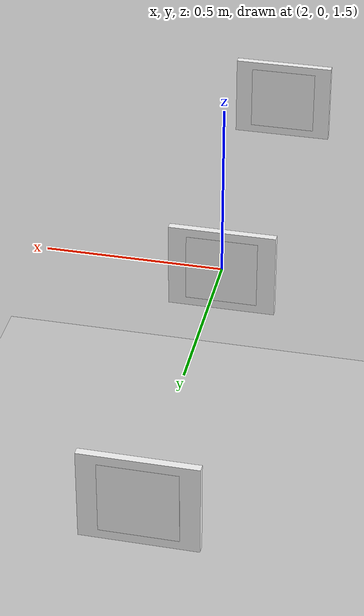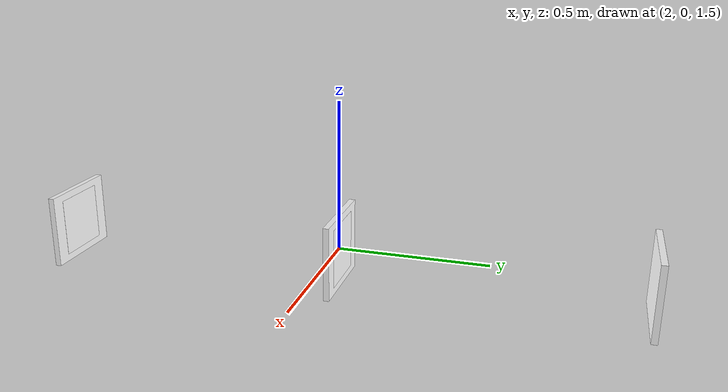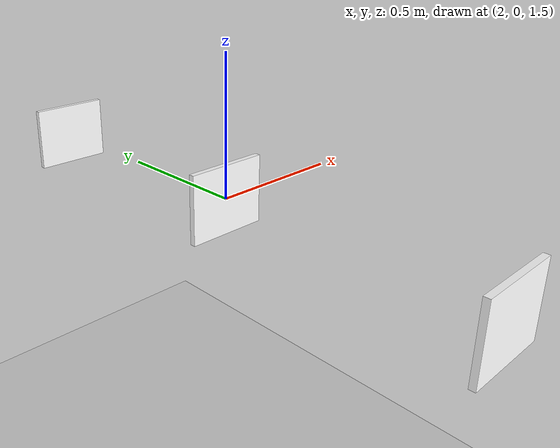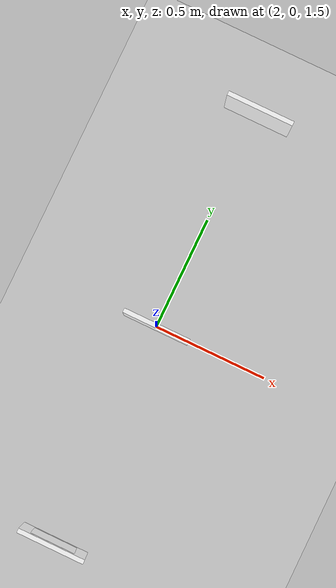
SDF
<?xml version="1.0" ?>
<sdf version="1.10">
  <world name="aruco_tag_world">

    <physics name="1ms" type="ignored">
      <max_step_size>0.001</max_step_size>
      <real_time_factor>1.0</real_time_factor>
    </physics>

    <plugin
      filename="gz-sim-physics-system"
      name="gz::sim::systems::Physics">
    </plugin>
    <plugin
      filename="gz-sim-user-commands-system"
      name="gz::sim::systems::UserCommands">
    </plugin>
    <plugin
      filename="gz-sim-scene-broadcaster-system"
      name="gz::sim::systems::SceneBroadcaster">
    </plugin>

    <light type="directional" name="sun">
      <cast_shadows>true</cast_shadows>
      <pose>0 0 10 0 0 0</pose>
      <diffuse>0.8 0.8 0.8 1</diffuse>
      <specular>0.2 0.2 0.2 1</specular>
      <attenuation>
        <range>1000</range>
        <constant>0.9</constant>
        <linear>0.01</linear>
        <quadratic>0.001</quadratic>
      </attenuation>
      <direction>-0.5 0.1 -0.9</direction>
    </light>

    <model name="ground_plane">
      <static>true</static>
      <link name="link">
        <collision name="collision">
          <geometry>
            <plane>
              <normal>0 0 1</normal>
              <size>20 20</size>
            </plane>
          </geometry>
        </collision>
        <visual name="visual">
          <geometry>
            <plane>
              <normal>0 0 1</normal>
              <size>20 20</size>
            </plane>
          </geometry>
          <material>
            <ambient>0.8 0.8 0.8 1</ambient>
            <diffuse>0.8 0.8 0.8 1</diffuse>
          </material>
        </visual>
      </link>
    </model>

    <include>
      <uri>model://aruco_tag_whiteboard</uri>
      <name>aruco_marker_1</name>
      <pose>2 0 1.5 0 0 0</pose>
    </include>

    <include>
      <uri>model://aruco_tag_whiteboard</uri>
      <name>aruco_marker_2</name>
      <pose>2 1 1.5 0 0 0</pose>
    </include>

    <include>
      <uri>model://aruco_tag_whiteboard</uri>
      <name>aruco_marker_3</name>
      <pose>2 -1 1.5 0 0 0</pose>
    </include>

  </world>
</sdf>

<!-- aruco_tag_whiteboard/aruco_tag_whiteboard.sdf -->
<sdf version="1.10">
  <model name="aruco_tag_whiteboard">
    <static>true</static>

    <link name="board_link">
      <pose>0 0 0 0 0 0</pose>

      <collision name="board_collision">
        <geometry>
          <box>
            <size>0.30 0.02 0.25</size>
          </box>
        </geometry>
      </collision>

      <visual name="board_visual">
        <geometry>
          <box>
            <size>0.30 0.02 0.25</size>
          </box>
        </geometry>
        <material>
          <ambient>1 1 1 1</ambient>
          <diffuse>1 1 1 1</diffuse>
          <specular>0.2 0.2 0.2 1</specular>
        </material>
      </visual>

      <visual name="tag_visual_front">
        <pose>0 0.0105 0 -1.5708 0 0</pose>
        <geometry>
          <plane>
            <normal>0 0 1</normal>
            <size>0.20 0.20</size>
          </plane>
        </geometry>
        <material>
          <ambient>1 1 1 1</ambient>
          <diffuse>1 1 1 1</diffuse>
          <specular>0.1 0.1 0.1 1</specular>
          <pbr>
            <metal>
              <albedo_map>materials/textures/apriltag_36h11_id1.png</albedo_map>
              <roughness>0.9</roughness>
              <metalness>0.0</metalness>
            </metal>
          </pbr>
        </material>
      </visual>

    </link>
  </model>
</sdf>
